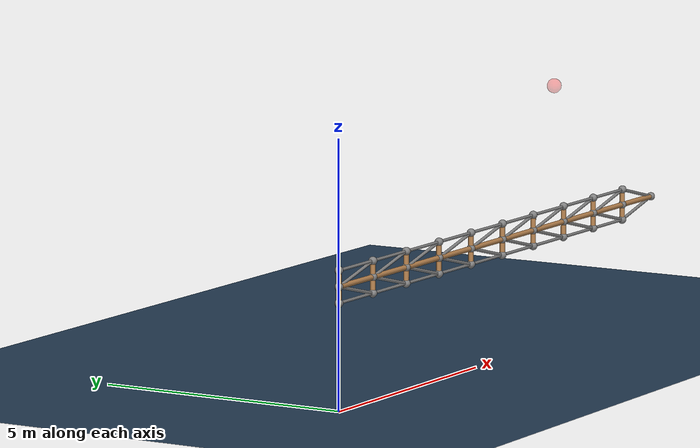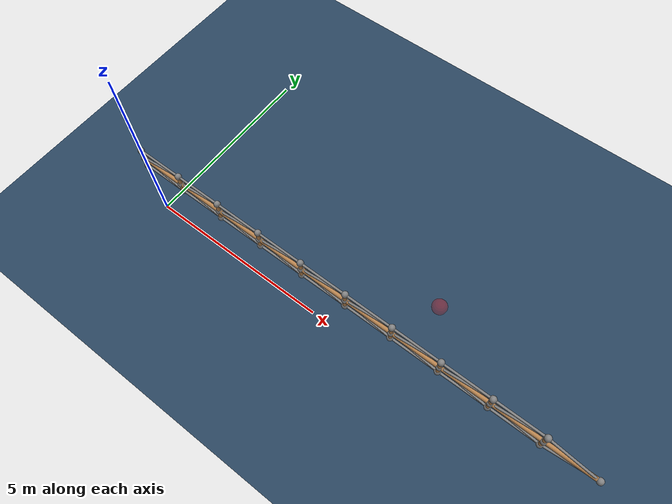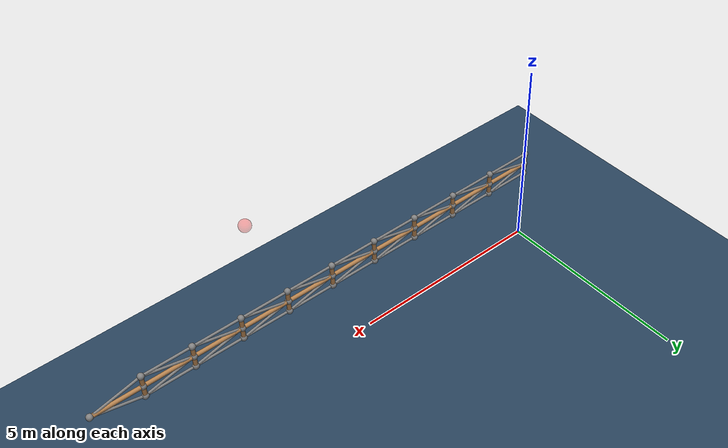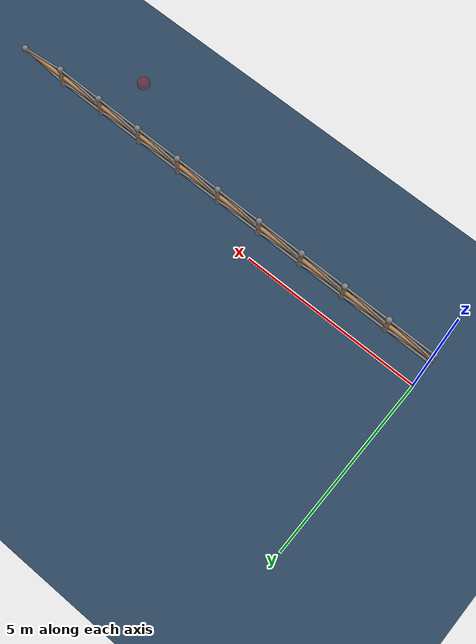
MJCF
<mujoco model="arm">
    <include file="./common/visual.xml"/>
    <include file="./common/skybox.xml"/>
    <include file="./common/materials.xml"/>

    <option timestep="0.01" iterations="50" solver="Newton" tolerance="1e-10" gravity = "0 0 0" collision="predefined" viscosity="0.04"/>

    <size njmax="500" nconmax="100" nstack="1000"/>

    <visual>
        <rgba haze=".15 .25 .35 1"/>
    </visual>

    <default>
        <joint type="hinge" pos="0 0 0" axis="0 1 0" limited="false" range="-180 180" damping=".5"/>
        <motor ctrllimited="false" gear="1"/>
		<tendon stiffness="0" damping=".5" width="0.03"/>
		<geom size="0.05" mass="0.1" material="self"/>
		<site size="0.08"/>
    </default>

    <worldbody>
        <geom name="floor" pos="0 0 0" size="0 0 1" type="plane" material="grid"/>
        <light directional="true" diffuse=".8 .8 .8" specular=".2 .2 .2" pos="0 0 5" dir="0 0 -1"/>
        <site name="target" pos="8 0 5" size="0.14" rgba="1 0 0 .3"/>
        <body name="vbar1" pos="0 0 2">
            <geom type="capsule" fromto="0 0 0  0 0 0.6"/>
            <site name="vb1s" pos="0 0 0"/>
			<site name="vb1e" pos="0 0 0.6"/>
            <site name="vb1m" pos="0 0 0.3"/>
            <body name="hbar1" pos="0 0 0.3">
                <geom type="capsule" fromto="0 0 0  1.2 0 0"/>
                <body name="vbar2" pos="1.2 0 0">
                    <geom type="capsule" fromto="0 0 -0.3  0 0 0.3"/>
                    <site name="vb2s" pos="0 0 -0.3"/>
                    <site name="vb2e" pos="0 0 0.3"/>
                    <site name="vb2m" pos="0 0 0"/>
                    <joint pos="0 0 0"/>
                    <body name="hbar2" pos="0 0 0">
                        <geom type="capsule" fromto="0 0 0  1.2 0 0"/>
                        <body name="vbar3" pos="1.2 0 0">
                            <geom type="capsule" fromto="0 0 -0.3  0 0 0.3"/>
                            <site name="vb3s" pos="0 0 -0.3"/>
                            <site name="vb3e" pos="0 0 0.3"/>
                            <site name="vb3m" pos="0 0 0"/>
                            <joint pos="0 0 0"/>
                            <body name="hbar3" pos="0 0 0">
                                <geom type="capsule" fromto="0 0 0  1.2 0 0"/>
                                <body name="vbar4" pos="1.2 0 0">
                                    <geom type="capsule" fromto="0 0 -0.3  0 0 0.3"/>
                                    <site name="vb4s" pos="0 0 -0.3"/>
                                    <site name="vb4e" pos="0 0 0.3"/>
                                    <site name="vb4m" pos="0 0 0"/>
                                    <joint name="j7" pos="0 0 0"/>
                                    <body name="hbar4" pos="0 0 0">
                                        <geom type="capsule" fromto="0 0 0  1.2 0 0"/>
                                        <body name="vbar5" pos="1.2 0 0">
                                            <geom type="capsule" fromto="0 0 -0.3  0 0 0.3"/>
                                            <site name="vb5s" pos="0 0 -0.3"/>
                                            <site name="vb5e" pos="0 0 0.3"/>
                                            <site name="vb5m" pos="0 0 0"/>
                                            <joint name="j9" pos="0 0 0"/>
                                            <body name="hbar5" pos="0 0 0">
                                                <geom type="capsule" fromto="0 0 0  1.2 0 0"/>
                                                <body name="vbar6" pos="1.2 0 0">
                                                    <geom type="capsule" fromto="0 0 -0.3  0 0 0.3"/>
                                                    <site name="vb6s" pos="0 0 -0.3"/>
                                                    <site name="vb6e" pos="0 0 0.3"/>
                                                    <site name="vb6m" pos="0 0 0"/>
                                                    <joint name="j11" pos="0 0 0"/>
                                                    <body name="hbar6" pos="0 0 0">
                                                        <geom type="capsule" fromto="0 0 0  1.2 0 0"/>
                                                        <body name="vbar7" pos="1.2 0 0">
                                                            <geom type="capsule" fromto="0 0 -0.3  0 0 0.3"/>
                                                            <site name="vb7s" pos="0 0 -0.3"/>
                                                            <site name="vb7e" pos="0 0 0.3"/>
                                                            <site name="vb7m" pos="0 0 0"/>
                                                            <joint pos="0 0 0"/>
                                                            <body name="hbar7" pos="0 0 0">
                                                                <geom type="capsule" fromto="0 0 0  1.2 0 0"/>
                                                                <body name="vbar8" pos="1.2 0 0">
                                                                    <geom type="capsule" fromto="0 0 -0.3  0 0 0.3"/>
                                                                    <site name="vb8s" pos="0 0 -0.3"/>
                                                                    <site name="vb8e" pos="0 0 0.3"/>
                                                                    <site name="vb8m" pos="0 0 0"/>
                                                                    <joint pos="0 0 0"/>
                                                                    <body name="hbar8" pos="0 0 0">
                                                                        <geom type="capsule" fromto="0 0 0  1.2 0 0"/>
                                                                        <body name="vbar9" pos="1.2 0 0">
                                                                            <geom type="capsule" fromto="0 0 -0.3  0 0 0.3"/>
                                                                            <site name="vb9s" pos="0 0 -0.3"/>
                                                                            <site name="vb9e" pos="0 0 0.3"/>
                                                                            <site name="vb9m" pos="0 0 0"/>
                                                                            <joint pos="0 0 0"/>
                                                                            <body name="hbar9" pos="0 0 0">
                                                                                <geom type="capsule" fromto="0 0 0  1.2 0 0"/>
                                                                                <body name="vbar10" pos="1.2 0 0">
                                                                                    <geom type="capsule" fromto="0 0 -0.3  0 0 0.3"/>
                                                                                    <site name="vb10s" pos="0 0 -0.3"/>
                                                                                    <site name="vb10e" pos="0 0 0.3"/>
                                                                                    <site name="vb10m" pos="0 0 0"/>
                                                                                    <joint pos="0 0 0"/>
                                                                                    <body name="hbar10" pos="0 0 0">
                                                                                        <geom type="capsule" fromto="0 0 0  1.2 0 0"/>
                                                                                        <site name="hb10e" pos="1.2 0 0"/>
                                                                                    </body>
                                                                                </body>
                                                                            </body>
                                                                        </body>
                                                                    </body>
                                                                </body>
                                                            </body>
                                                        </body>
                                                    </body>
                                                </body>
                                            </body>
                                        </body>
                                    </body>
                                </body>
                            </body>
                        </body>
                    </body>
                </body>
            </body>
        </body>
    </worldbody>

    <tendon>
        <spatial name="S11">
            <site site="vb1s"/>
            <site site="vb2s"/>
        </spatial>
		<spatial name="S12">
            <site site="vb1m"/>
            <site site="vb2s"/>
        </spatial>
		<spatial name="S13">
            <site site="vb1m"/>
            <site site="vb2e"/>
        </spatial>
		<spatial name="S14">
            <site site="vb1e"/>
            <site site="vb2e"/>
        </spatial>

        <spatial name="S21">
            <site site="vb2s"/>
            <site site="vb3s"/>
        </spatial>
		<spatial name="S22">
            <site site="vb2m"/>
            <site site="vb3s"/>
        </spatial>
		<spatial name="S23">
            <site site="vb2m"/>
            <site site="vb3e"/>
        </spatial>
		<spatial name="S24">
            <site site="vb2e"/>
            <site site="vb3e"/>
        </spatial>

        <spatial name="S31">
            <site site="vb3s"/>
            <site site="vb4s"/>
        </spatial>
		<spatial name="S32">
            <site site="vb3m"/>
            <site site="vb4s"/>
        </spatial>
		<spatial name="S33">
            <site site="vb3m"/>
            <site site="vb4e"/>
        </spatial>
		<spatial name="S34">
            <site site="vb3e"/>
            <site site="vb4e"/>
        </spatial>

        <spatial name="S41">
            <site site="vb4s"/>
            <site site="vb5s"/>
        </spatial>
		<spatial name="S42">
            <site site="vb4m"/>
            <site site="vb5s"/>
        </spatial>
		<spatial name="S43">
            <site site="vb4m"/>
            <site site="vb5e"/>
        </spatial>
		<spatial name="S44">
            <site site="vb4e"/>
            <site site="vb5e"/>
        </spatial>

        <spatial name="S51">
            <site site="vb5s"/>
            <site site="vb6s"/>
        </spatial>
		<spatial name="S52">
            <site site="vb5m"/>
            <site site="vb6s"/>
        </spatial>
		<spatial name="S53">
            <site site="vb5m"/>
            <site site="vb6e"/>
        </spatial>
		<spatial name="S54">
            <site site="vb5e"/>
            <site site="vb6e"/>
        </spatial>

        <spatial name="S61">
            <site site="vb6s"/>
            <site site="vb7s"/>
        </spatial>
		<spatial name="S62">
            <site site="vb6m"/>
            <site site="vb7s"/>
        </spatial>
		<spatial name="S63">
            <site site="vb6m"/>
            <site site="vb7e"/>
        </spatial>
		<spatial name="S64">
            <site site="vb6e"/>
            <site site="vb7e"/>
        </spatial>

        <spatial name="S71">
            <site site="vb7s"/>
            <site site="vb8s"/>
        </spatial>
		<spatial name="S72">
            <site site="vb7m"/>
            <site site="vb8s"/>
        </spatial>
		<spatial name="S73">
            <site site="vb7m"/>
            <site site="vb8e"/>
        </spatial>
		<spatial name="S74">
            <site site="vb7e"/>
            <site site="vb8e"/>
        </spatial>

        <spatial name="S81">
            <site site="vb8s"/>
            <site site="vb9s"/>
        </spatial>
		<spatial name="S82">
            <site site="vb8m"/>
            <site site="vb9s"/>
        </spatial>
		<spatial name="S83">
            <site site="vb8m"/>
            <site site="vb9e"/>
        </spatial>
		<spatial name="S84">
            <site site="vb8e"/>
            <site site="vb9e"/>
        </spatial>

        <spatial name="S91">
            <site site="vb9s"/>
            <site site="vb10s"/>
        </spatial>
		<spatial name="S92">
            <site site="vb9m"/>
            <site site="vb10s"/>
        </spatial>
		<spatial name="S93">
            <site site="vb9m"/>
            <site site="vb10e"/>
        </spatial>
		<spatial name="S94">
            <site site="vb9e"/>
            <site site="vb10e"/>
        </spatial>

        <spatial name="S101">
            <site site="vb10s"/>
            <site site="hb10e"/>
        </spatial>
        <spatial name="S102">
            <site site="vb10e"/>
            <site site="hb10e"/>
        </spatial>
    </tendon>

    <actuator>
        <motor tendon="S11"/>
        <motor tendon="S12"/>
		<motor tendon="S13"/>
        <motor tendon="S14"/>

        <motor tendon="S21"/>
        <motor tendon="S22"/>
		<motor tendon="S23"/>
        <motor tendon="S24"/>

        <motor tendon="S31"/>
        <motor tendon="S32"/>
		<motor tendon="S33"/>
        <motor tendon="S34"/>

        <motor tendon="S41"/>
        <motor tendon="S42"/>
		<motor tendon="S43"/>
        <motor tendon="S44"/>

        <motor tendon="S51"/>
        <motor tendon="S52"/>
		<motor tendon="S53"/>
        <motor tendon="S54"/>

        <motor tendon="S61"/>
        <motor tendon="S62"/>
		<motor tendon="S63"/>
        <motor tendon="S64"/>

        <motor tendon="S71"/>
        <motor tendon="S72"/>
		<motor tendon="S73"/>
        <motor tendon="S74"/>

        <motor tendon="S81"/>
        <motor tendon="S82"/>
		<motor tendon="S83"/>
        <motor tendon="S84"/>

        <motor tendon="S91"/>
        <motor tendon="S92"/>
		<motor tendon="S93"/>
        <motor tendon="S94"/>

        <motor tendon="S101"/>
        <motor tendon="S102"/>
    </actuator>
</mujoco>

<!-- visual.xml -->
<mujoco>
    <visual>
        <headlight ambient=".4 .4 .4" diffuse=".8 .8 .8" specular="0.1 0.1 0.1" />
        <map znear=".01" />
        <quality shadowsize="2048" />
    </visual>
</mujoco>

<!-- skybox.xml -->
<mujoco>
    <asset>
        <texture name="skybox" type="skybox" builtin="gradient" rgb1=".4 .6 .8" rgb2="0 0 0" width="800" height="800" mark="random" markrgb="1 1 1" />
    </asset>
</mujoco>

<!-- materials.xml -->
<!--
Common textures, colors and materials to be used throughout this suite. Some
materials such as xxx_highlight are activated on occurence of certain events,
for example receiving a positive reward.
-->
<mujoco>
    <asset>
        <texture name="grid" type="2d" builtin="checker" rgb1=".1 .2 .3" rgb2=".2 .3 .4" width="300" height="300" mark="edge" markrgb=".2 .3 .4" />
        <material name="grid" texture="grid" texrepeat="1 1" texuniform="true" reflectance=".2" />
        <material name="self" rgba=".7 .5 .3 1" />
        <material name="self_default" rgba=".7 .5 .3 1" />
        <material name="self_highlight" rgba="0 .5 .3 1" />
        <material name="effector" rgba=".7 .4 .2 1" />
        <material name="effector_default" rgba=".7 .4 .2 1" />
        <material name="effector_highlight" rgba="0 .5 .3 1" />
        <material name="decoration" rgba=".3 .5 .7 1" />
        <material name="eye" rgba="0 .2 1 1" />
        <material name="target" rgba=".6 .3 .3 1" />
        <material name="target_default" rgba=".6 .3 .3 1" />
        <material name="target_highlight" rgba=".6 .3 .3 .4" />
    </asset>
</mujoco>
